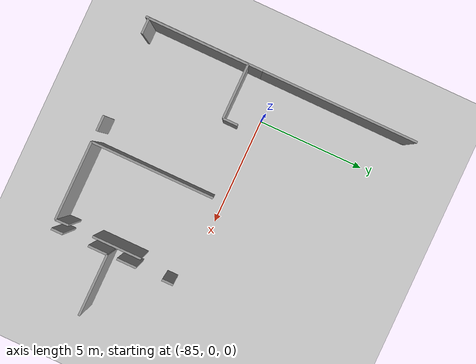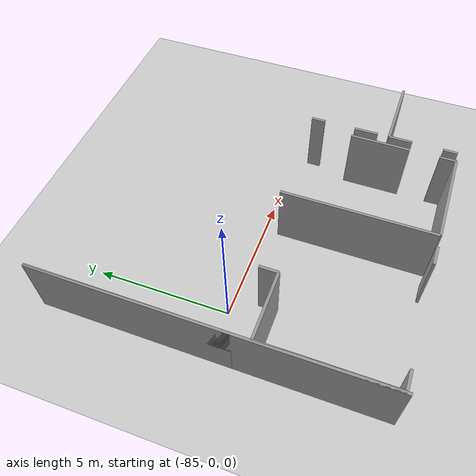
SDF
<sdf version="1.6">
 <world name="default">
  <model name="ground_plane">
   <static>1</static>
   <link name="link">
    <collision name="collision">
     <geometry><plane><normal>0 0 1</normal><size>100 100</size></plane></geometry>
     <surface><friction><ode><mu>100</mu><mu2>50</mu2></ode></friction></surface>
    </collision>
    <visual name="visual">
     <cast_shadows>0</cast_shadows>
     <geometry><plane><normal>0 0 1</normal><size>100 100</size></plane></geometry>
     <material>
      <script><uri>file://media/materials/scripts/gazebo.material</uri><name>Gazebo/Grey</name></script>
     </material>
    </visual>
   </link>
  </model>
  <model name="50015850_PLAN4">
   <static>1</static>
   <link name="Wall_23">
    <collision name="Wall_23_Collision">
     <geometry><box><size>0.721781612842 0.1 2.5</size></box></geometry>
     <pose>0.360890806421 0 1.25 0 0 0</pose>
    </collision>
    <visual name="Wall_23_Visual">
     <pose>0.360890806421 0 1.25 0 0 0</pose>
     <geometry><box><size>0.721781612842 0.1 2.5</size></box></geometry>
     <material>
      <script><uri>file://media/materials/scripts/gazebo.material</uri><name>Gazebo/Grey</name></script>
      <ambient>1 1 1 1</ambient>
     </material>
    </visual>
    <pose>5.24763657128 -12.4594886111 0 0 0 3.14159265359</pose>
   </link>
   <link name="Wall_24">
    <collision name="Wall_24_Collision">
     <geometry><box><size>0.714929255758 0.1 2.5</size></box></geometry>
     <pose>0.357464627879 0 1.25 0 0 0</pose>
    </collision>
    <visual name="Wall_24_Visual">
     <pose>0.357464627879 0 1.25 0 0 0</pose>
     <geometry><box><size>0.714929255758 0.1 2.5</size></box></geometry>
     <material>
      <script><uri>file://media/materials/scripts/gazebo.material</uri><name>Gazebo/Grey</name></script>
      <ambient>1 1 1 1</ambient>
     </material>
    </visual>
    <pose>0.730410506948 -12.4594886111 0 0 0 3.14159265359</pose>
   </link>
   <link name="Wall_25">
    <collision name="Wall_25_Collision">
     <geometry><box><size>4.60823551805 0.1 2.5</size></box></geometry>
     <pose>2.30411775903 0 1.25 0 0 0</pose>
    </collision>
    <visual name="Wall_25_Visual">
     <pose>2.30411775903 0 1.25 0 0 0</pose>
     <geometry><box><size>4.60823551805 0.1 2.5</size></box></geometry>
     <material>
      <script><uri>file://media/materials/scripts/gazebo.material</uri><name>Gazebo/Grey</name></script>
      <ambient>1 1 1 1</ambient>
     </material>
    </visual>
    <pose>0.0154812511896 -12.4594886111 0 0 0 1.57079632679</pose>
   </link>
   <link name="Wall_26">
    <collision name="Wall_26_Collision">
     <geometry><box><size>2.51303851278 0.1 2.5</size></box></geometry>
     <pose>1.25651925639 0 1.25 0 0 0</pose>
    </collision>
    <visual name="Wall_26_Visual">
     <pose>1.25651925639 0 1.25 0 0 0</pose>
     <geometry><box><size>2.51303851278 0.1 2.5</size></box></geometry>
     <material>
      <script><uri>file://media/materials/scripts/gazebo.material</uri><name>Gazebo/Grey</name></script>
      <ambient>1 1 1 1</ambient>
     </material>
    </visual>
    <pose>0.0154812511896 -7.85125309308 0 0 0 0.0</pose>
   </link>
   <link name="Wall_27">
    <collision name="Wall_27_Collision">
     <geometry><box><size>0.677418945498 0.1 2.5</size></box></geometry>
     <pose>0.338709472749 0 1.25 0 0 0</pose>
    </collision>
    <visual name="Wall_27_Visual">
     <pose>0.338709472749 0 1.25 0 0 0</pose>
     <geometry><box><size>0.677418945498 0.1 2.5</size></box></geometry>
     <material>
      <script><uri>file://media/materials/scripts/gazebo.material</uri><name>Gazebo/Grey</name></script>
      <ambient>1 1 1 1</ambient>
     </material>
    </visual>
    <pose>2.52851976397 -7.85125309308 0 0 0 1.57079632679</pose>
   </link>
   <link name="Wall_29">
    <collision name="Wall_29_Collision">
     <geometry><box><size>7.1673117188 0.1 2.5</size></box></geometry>
     <pose>3.5836558594 0 1.25 0 0 0</pose>
    </collision>
    <visual name="Wall_29_Visual">
     <pose>3.5836558594 0 1.25 0 0 0</pose>
     <geometry><box><size>7.1673117188 0.1 2.5</size></box></geometry>
     <material>
      <script><uri>file://media/materials/scripts/gazebo.material</uri><name>Gazebo/Grey</name></script>
      <ambient>1 1 1 1</ambient>
     </material>
    </visual>
    <pose>0.0 -7.17383414758 0 0 0 1.57079632679</pose>
   </link>
   <link name="Wall_40">
    <collision name="Wall_40_Collision">
     <geometry><box><size>3.6160142123 0.1 2.5</size></box></geometry>
     <pose>1.80800710615 0 1.25 0 0 0</pose>
    </collision>
    <visual name="Wall_40_Visual">
     <pose>1.80800710615 0 1.25 0 0 0</pose>
     <geometry><box><size>3.6160142123 0.1 2.5</size></box></geometry>
     <material>
      <script><uri>file://media/materials/scripts/gazebo.material</uri><name>Gazebo/Grey</name></script>
      <ambient>1 1 1 1</ambient>
     </material>
    </visual>
    <pose>9.36920246177 -12.4691326692 0 0 0 3.14159265359</pose>
   </link>
   <link name="Wall_41">
    <collision name="Wall_41_Collision">
     <geometry><box><size>5.65111350803 0.1 2.5</size></box></geometry>
     <pose>2.82555675401 0 1.25 0 0 0</pose>
    </collision>
    <visual name="Wall_41_Visual">
     <pose>2.82555675401 0 1.25 0 0 0</pose>
     <geometry><box><size>5.65111350803 0.1 2.5</size></box></geometry>
     <material>
      <script><uri>file://media/materials/scripts/gazebo.material</uri><name>Gazebo/Grey</name></script>
      <ambient>1 1 1 1</ambient>
     </material>
    </visual>
    <pose>5.75318824948 -12.4691326692 0 0 0 1.57079632679</pose>
   </link>
   <link name="Wall_45">
    <collision name="Wall_45_Collision">
     <geometry><box><size>2.25099930207 0.1 2.5</size></box></geometry>
     <pose>1.12549965104 0 1.25 0 0 0</pose>
    </collision>
    <visual name="Wall_45_Visual">
     <pose>1.12549965104 0 1.25 0 0 0</pose>
     <geometry><box><size>2.25099930207 0.1 2.5</size></box></geometry>
     <material>
      <script><uri>file://media/materials/scripts/gazebo.material</uri><name>Gazebo/Grey</name></script>
      <ambient>1 1 1 1</ambient>
     </material>
    </visual>
    <pose>9.35346741958 -8.49235454603 0 0 0 -1.57079632679</pose>
   </link>
   <link name="Wall_46">
    <collision name="Wall_46_Collision">
     <geometry><box><size>0.607271969239 0.1 2.5</size></box></geometry>
     <pose>0.30363598462 0 1.25 0 0 0</pose>
    </collision>
    <visual name="Wall_46_Visual">
     <pose>0.30363598462 0 1.25 0 0 0</pose>
     <geometry><box><size>0.607271969239 0.1 2.5</size></box></geometry>
     <material>
      <script><uri>file://media/materials/scripts/gazebo.material</uri><name>Gazebo/Grey</name></script>
      <ambient>1 1 1 1</ambient>
     </material>
    </visual>
    <pose>9.35346741958 -11.8620645898 0 0 0 -1.54488239659</pose>
   </link>
   <link name="Wall_48">
    <collision name="Wall_48_Collision">
     <geometry><box><size>0.904308102278 0.1 2.5</size></box></geometry>
     <pose>0.452154051139 0 1.25 0 0 0</pose>
    </collision>
    <visual name="Wall_48_Visual">
     <pose>0.452154051139 0 1.25 0 0 0</pose>
     <geometry><box><size>0.904308102278 0.1 2.5</size></box></geometry>
     <material>
      <script><uri>file://media/materials/scripts/gazebo.material</uri><name>Gazebo/Grey</name></script>
      <ambient>1 1 1 1</ambient>
     </material>
    </visual>
    <pose>9.77907493179 -9.42300615443 0 0 0 1.57079632679</pose>
   </link>
   <link name="Wall_49">
    <collision name="Wall_49_Collision">
     <geometry><box><size>0.524738278028 0.1 2.5</size></box></geometry>
     <pose>0.262369139014 0 1.25 0 0 0</pose>
    </collision>
    <visual name="Wall_49_Visual">
     <pose>0.262369139014 0 1.25 0 0 0</pose>
     <geometry><box><size>0.524738278028 0.1 2.5</size></box></geometry>
     <material>
      <script><uri>file://media/materials/scripts/gazebo.material</uri><name>Gazebo/Grey</name></script>
      <ambient>1 1 1 1</ambient>
     </material>
    </visual>
    <pose>9.77907493179 -7.32648943595 0 0 0 1.57079632679</pose>
   </link>
   <link name="Wall_53">
    <collision name="Wall_53_Collision">
     <geometry><box><size>0.535752807563 0.1 2.5</size></box></geometry>
     <pose>0.267876403781 0 1.25 0 0 0</pose>
    </collision>
    <visual name="Wall_53_Visual">
     <pose>0.267876403781 0 1.25 0 0 0</pose>
     <geometry><box><size>0.535752807563 0.1 2.5</size></box></geometry>
     <material>
      <script><uri>file://media/materials/scripts/gazebo.material</uri><name>Gazebo/Grey</name></script>
      <ambient>1 1 1 1</ambient>
     </material>
    </visual>
    <pose>9.7874500349 -12.4643106402 0 0 0 1.57079632679</pose>
   </link>
   <link name="Wall_54">
    <collision name="Wall_54_Collision">
     <geometry><box><size>0.88735486327 0.1 2.5</size></box></geometry>
     <pose>0.443677431635 0 1.25 0 0 0</pose>
    </collision>
    <visual name="Wall_54_Visual">
     <pose>0.443677431635 0 1.25 0 0 0</pose>
     <geometry><box><size>0.88735486327 0.1 2.5</size></box></geometry>
     <material>
      <script><uri>file://media/materials/scripts/gazebo.material</uri><name>Gazebo/Grey</name></script>
      <ambient>1 1 1 1</ambient>
     </material>
    </visual>
    <pose>9.7874500349 -10.7517289512 0 0 0 1.57079632679</pose>
   </link>
   <link name="Wall_55">
    <collision name="Wall_55_Collision">
     <geometry><box><size>2.83535308673 0.1 2.5</size></box></geometry>
     <pose>1.41767654337 0 1.25 0 0 0</pose>
    </collision>
    <visual name="Wall_55_Visual">
     <pose>1.41767654337 0 1.25 0 0 0</pose>
     <geometry><box><size>2.83535308673 0.1 2.5</size></box></geometry>
     <material>
      <script><uri>file://media/materials/scripts/gazebo.material</uri><name>Gazebo/Grey</name></script>
      <ambient>1 1 1 1</ambient>
     </material>
    </visual>
    <pose>9.7874500349 -9.86437408794 0 0 0 0.0</pose>
   </link>
   <link name="Wall_189">
    <collision name="Wall_189_Collision">
     <geometry><box><size>12.614047332 0.1 2.5</size></box></geometry>
     <pose>6.30702366601 0 1.25 0 0 0</pose>
    </collision>
    <visual name="Wall_189_Visual">
     <pose>6.30702366601 0 1.25 0 0 0</pose>
     <geometry><box><size>12.614047332 0.1 2.5</size></box></geometry>
     <material>
      <script><uri>file://media/materials/scripts/gazebo.material</uri><name>Gazebo/Grey</name></script>
      <ambient>1 1 1 1</ambient>
     </material>
    </visual>
    <pose>0.0 -12.614047332 0 0 0 1.57079632679</pose>
   </link>
   <pose>-86.8 6.31404733202 0 0 0 0</pose>
  </model>
 </world>
</sdf>
